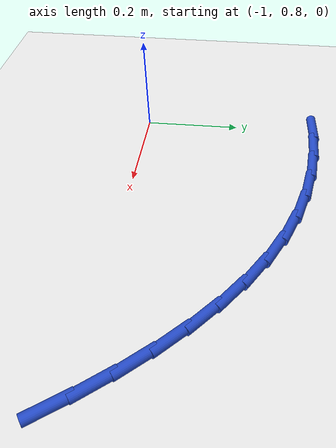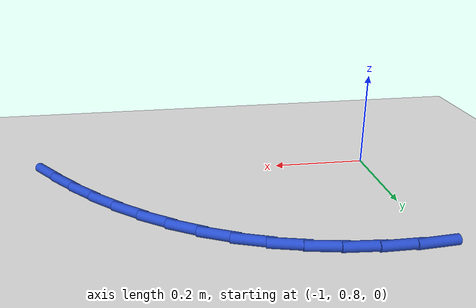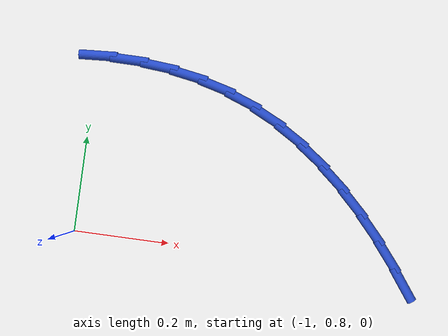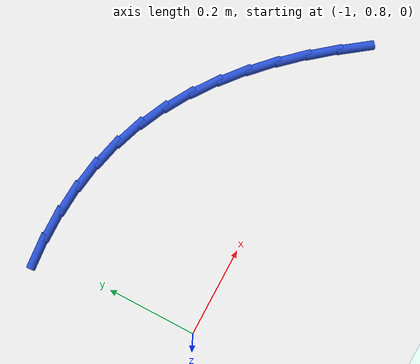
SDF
<sdf version="1.6">
 <world name="default">
  <model name="ground_plane">
   <static>1</static>
   <link name="link">
    <collision name="collision">
     <geometry><plane><normal>0 0 1</normal><size>100 100</size></plane></geometry>
     <surface><friction><ode><mu>100</mu><mu2>50</mu2></ode></friction></surface>
    </collision>
    <visual name="visual">
     <cast_shadows>0</cast_shadows>
     <geometry><plane><normal>0 0 1</normal><size>100 100</size></plane></geometry>
     <material>
      <script><uri>file://media/materials/scripts/gazebo.material</uri><name>Gazebo/WhiteGlow</name></script>
     </material>
    </visual>
   </link>
  </model>
  <model name="line">
   <link name="link_13">
    <pose>-0.3024081515718559 0.7823879895287916 0.01 0 1.57 -0.935422764888233</pose>
    <collision name="collision">
     <geometry><cylinder><radius>0.01</radius><length>0.08</length></cylinder></geometry>
    </collision>
    <visual name="visual">
     <material>
      <script><name>Gazebo/Blue</name><uri>file://media/materials/scripts/gazebo.material</uri></script>
     </material>
     <geometry><cylinder><radius>0.01</radius><length>0.08</length></cylinder></geometry>
    </visual>
   </link>
   <link name="link_14">
    <pose>-0.3421132985922979 0.8362344302503142 0.01 0 1.57 -0.8867306231577341</pose>
    <collision name="collision">
     <geometry><cylinder><radius>0.01</radius><length>0.08</length></cylinder></geometry>
    </collision>
    <visual name="visual">
     <material>
      <script><name>Gazebo/Blue</name><uri>file://media/materials/scripts/gazebo.material</uri></script>
     </material>
     <geometry><cylinder><radius>0.01</radius><length>0.08</length></cylinder></geometry>
    </visual>
   </link>
   <link name="link_15">
    <pose>-0.38399485670188754 0.8875971324980929 0.01 0 1.57 -0.8319453294038378</pose>
    <collision name="collision">
     <geometry><cylinder><radius>0.01</radius><length>0.08</length></cylinder></geometry>
    </collision>
    <visual name="visual">
     <material>
      <script><name>Gazebo/Blue</name><uri>file://media/materials/scripts/gazebo.material</uri></script>
     </material>
     <geometry><cylinder><radius>0.01</radius><length>0.08</length></cylinder></geometry>
    </visual>
   </link>
   <link name="link_16">
    <pose>-0.42811398074625373 0.9360272766154183 0.01 0 1.57 -0.7704312126502769</pose>
    <collision name="collision">
     <geometry><cylinder><radius>0.01</radius><length>0.08</length></cylinder></geometry>
    </collision>
    <visual name="visual">
     <material>
      <script><name>Gazebo/Blue</name><uri>file://media/materials/scripts/gazebo.material</uri></script>
     </material>
     <geometry><cylinder><radius>0.01</radius><length>0.08</length></cylinder></geometry>
    </visual>
   </link>
   <link name="link_17">
    <pose>-0.474531825571026 0.9810760429455819 0.01 0 1.57 -0.7016008214032693</pose>
    <collision name="collision">
     <geometry><cylinder><radius>0.01</radius><length>0.08</length></cylinder></geometry>
    </collision>
    <visual name="visual">
     <material>
      <script><name>Gazebo/Blue</name><uri>file://media/materials/scripts/gazebo.material</uri></script>
     </material>
     <geometry><cylinder><radius>0.01</radius><length>0.08</length></cylinder></geometry>
    </visual>
   </link>
   <link name="link_18">
    <pose>-0.5233095460218334 1.0222946118318748 0.01 0 1.57 -0.6250057751652972</pose>
    <collision name="collision">
     <geometry><cylinder><radius>0.01</radius><length>0.08</length></cylinder></geometry>
    </collision>
    <visual name="visual">
     <material>
      <script><name>Gazebo/Blue</name><uri>file://media/materials/scripts/gazebo.material</uri></script>
     </material>
     <geometry><cylinder><radius>0.01</radius><length>0.08</length></cylinder></geometry>
    </visual>
   </link>
   <link name="link_19">
    <pose>-0.5745082969443053 1.059234163617588 0.01 0 1.57 -0.5404626912368351</pose>
    <collision name="collision">
     <geometry><cylinder><radius>0.01</radius><length>0.08</length></cylinder></geometry>
    </collision>
    <visual name="visual">
     <material>
      <script><name>Gazebo/Blue</name><uri>file://media/materials/scripts/gazebo.material</uri></script>
     </material>
     <geometry><cylinder><radius>0.01</radius><length>0.08</length></cylinder></geometry>
    </visual>
   </link>
   <link name="link_20">
    <pose>-0.6281892331840707 1.0914458786460126 0.01 0 1.57 -0.4482050210684737</pose>
    <collision name="collision">
     <geometry><cylinder><radius>0.01</radius><length>0.08</length></cylinder></geometry>
    </collision>
    <visual name="visual">
     <material>
      <script><name>Gazebo/Blue</name><uri>file://media/materials/scripts/gazebo.material</uri></script>
     </material>
     <geometry><cylinder><radius>0.01</radius><length>0.08</length></cylinder></geometry>
    </visual>
   </link>
   <link name="link_21">
    <pose>-0.684413509586759 1.1184809372604398 0.01 0 1.57 -0.3493608336255621</pose>
    <collision name="collision">
     <geometry><cylinder><radius>0.01</radius><length>0.08</length></cylinder></geometry>
    </collision>
    <visual name="visual">
     <material>
      <script><name>Gazebo/Blue</name><uri>file://media/materials/scripts/gazebo.material</uri></script>
     </material>
     <geometry><cylinder><radius>0.01</radius><length>0.08</length></cylinder></geometry>
    </visual>
   </link>
   <link name="link_22">
    <pose>-0.7432293221471088 1.1399077925120866 0.01 0 1.57 -0.25181949530861175</pose>
    <collision name="collision">
     <geometry><cylinder><radius>0.01</radius><length>0.08</length></cylinder></geometry>
    </collision>
    <visual name="visual">
     <material>
      <script><name>Gazebo/Blue</name><uri>file://media/materials/scripts/gazebo.material</uri></script>
     </material>
     <geometry><cylinder><radius>0.01</radius><length>0.08</length></cylinder></geometry>
    </visual>
   </link>
   <link name="link_23">
    <pose>-0.804418080276963 1.155650494315172 0.01 0 1.57 -0.16207887795605336</pose>
    <collision name="collision">
     <geometry><cylinder><radius>0.01</radius><length>0.08</length></cylinder></geometry>
    </collision>
    <visual name="visual">
     <material>
      <script><name>Gazebo/Blue</name><uri>file://media/materials/scripts/gazebo.material</uri></script>
     </material>
     <geometry><cylinder><radius>0.01</radius><length>0.08</length></cylinder></geometry>
    </visual>
   </link>
   <link name="link_24">
    <pose>-0.8675107013769795 1.1659669705938862 0.01 0 1.57 -0.07982514607421706</pose>
    <collision name="collision">
     <geometry><cylinder><radius>0.01</radius><length>0.08</length></cylinder></geometry>
    </collision>
    <visual name="visual">
     <material>
      <script><name>Gazebo/Blue</name><uri>file://media/materials/scripts/gazebo.material</uri></script>
     </material>
     <geometry><cylinder><radius>0.01</radius><length>0.08</length></cylinder></geometry>
    </visual>
   </link>
   <link name="link_25">
    <pose>-0.9320284069693953 1.1711280728007092 0.01 0 1.57 -0.00422488532252309</pose>
    <collision name="collision">
     <geometry><cylinder><radius>0.01</radius><length>0.08</length></cylinder></geometry>
    </collision>
    <visual name="visual">
     <material>
      <script><name>Gazebo/Blue</name><uri>file://media/materials/scripts/gazebo.material</uri></script>
     </material>
     <geometry><cylinder><radius>0.01</radius><length>0.08</length></cylinder></geometry>
    </visual>
   </link>
   <link name="link_26">
    <pose>-0.9974924185764458 1.17140465238812 0.01 0 1.57 0.06568710442159191</pose>
    <collision name="collision">
     <geometry><cylinder><radius>0.01</radius><length>0.08</length></cylinder></geometry>
    </collision>
    <visual name="visual">
     <material>
      <script><name>Gazebo/Blue</name><uri>file://media/materials/scripts/gazebo.material</uri></script>
     </material>
     <geometry><cylinder><radius>0.01</radius><length>0.08</length></cylinder></geometry>
    </visual>
   </link>
  </model>
 </world>
</sdf>
